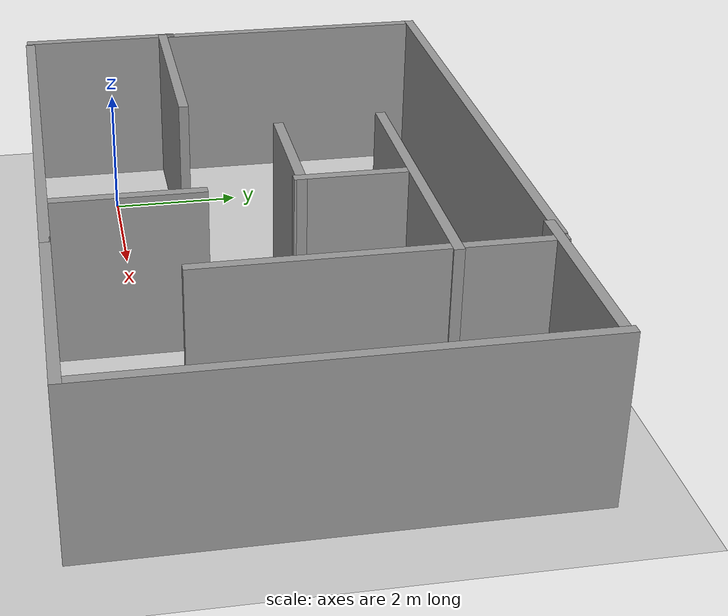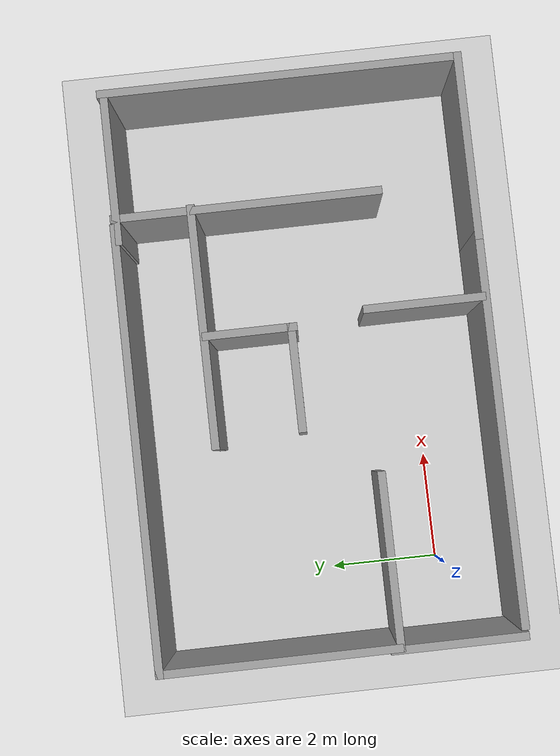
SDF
<sdf version="1.7">
 <world name="default">
  <light name="sun" type="directional">
   <pose>0 0 10 0 -0 0</pose>
   <diffuse>0.8 0.8 0.8 1</diffuse>
   <specular>0.2 0.2 0.2 1</specular>
   <attenuation>
    <range>1000</range>
    <constant>0.9</constant>
    <linear>0.01</linear>
    <quadratic>0.001</quadratic>
   </attenuation>
   <direction>-0.5 0.1 -0.9</direction>
   <spot><inner_angle>0</inner_angle><outer_angle>0</outer_angle><falloff>0</falloff></spot>
  </light>
  <model name="ground_plane">
   <static>1</static>
   <link name="link">
    <collision name="collision">
     <geometry><plane><normal>0 0 1</normal><size>100 100</size></plane></geometry>
     <surface><friction><ode><mu>100</mu><mu2>50</mu2></ode></friction></surface>
    </collision>
    <visual name="visual">
     <cast_shadows>0</cast_shadows>
     <geometry><plane><normal>0 0 1</normal><size>100 100</size></plane></geometry>
     <material>
      <script><uri>file://media/materials/scripts/gazebo.material</uri><name>Gazebo/Grey</name></script>
     </material>
    </visual>
   </link>
  </model>
  <gravity>0 0 -9.8</gravity>
  <magnetic_field>6e-06 2.3e-05 -4.2e-05</magnetic_field>
  <atmosphere type="adiabatic"/>
  <physics type="ode">
   <max_step_size>0.001</max_step_size>
   <real_time_factor>1</real_time_factor>
   <real_time_update_rate>1000</real_time_update_rate>
  </physics>
  <scene><ambient>0.4 0.4 0.4 1</ambient><background>0.7 0.7 0.7 1</background><shadows>1</shadows></scene>
  <audio><device>default</device></audio>
  <spherical_coordinates>
   <surface_model>EARTH_WGS84</surface_model>
   <latitude_deg>0</latitude_deg>
   <longitude_deg>0</longitude_deg>
   <elevation>0</elevation>
   <heading_deg>0</heading_deg>
  </spherical_coordinates>
  <model name="Untitled">
   <pose>3.91739 2.04106 0 0 -0 0</pose>
   <link name="Wall_10">
    <collision name="Wall_10_Collision">
     <geometry><box><size>3.5 0.15 2.5</size></box></geometry>
     <pose>0 0 1.25 0 -0 0</pose>
    </collision>
    <visual name="Wall_10_Visual">
     <pose>0 0 1.25 0 -0 0</pose>
     <geometry><box><size>3.5 0.15 2.5</size></box></geometry>
     <material>
      <script><uri>file://media/materials/scripts/gazebo.material</uri><name>Gazebo/Grey</name></script>
      <ambient>1 1 1 1</ambient>
     </material>
     <meta><layer>0</layer></meta>
    </visual>
    <pose>3.625 -3.3 0 0 -0 0</pose>
   </link>
   <link name="Wall_11">
    <collision name="Wall_11_Collision">
     <geometry><box><size>6.75 0.15 2.5</size></box></geometry>
     <pose>0 0 1.25 0 -0 0</pose>
    </collision>
    <visual name="Wall_11_Visual">
     <pose>0 0 1.25 0 -0 0</pose>
     <geometry><box><size>6.75 0.15 2.5</size></box></geometry>
     <material>
      <script><uri>file://media/materials/scripts/gazebo.material</uri><name>Gazebo/Grey</name></script>
      <ambient>1 1 1 1</ambient>
     </material>
     <meta><layer>0</layer></meta>
    </visual>
    <pose>5.3 0 0 0 -0 1.5708</pose>
   </link>
   <link name="Wall_13">
    <collision name="Wall_13_Collision">
     <geometry><box><size>4.5 0.15 2.5</size></box></geometry>
     <pose>0 0 1.25 0 -0 0</pose>
    </collision>
    <visual name="Wall_13_Visual">
     <pose>0 0 1.25 0 -0 0</pose>
     <geometry><box><size>4.5 0.15 2.5</size></box></geometry>
     <material>
      <script><uri>file://media/materials/scripts/gazebo.material</uri><name>Gazebo/Grey</name></script>
      <ambient>1 1 1 1</ambient>
     </material>
     <meta><layer>0</layer></meta>
    </visual>
    <pose>-5.3 1.125 0 0 -0 -1.5708</pose>
   </link>
   <link name="Wall_14">
    <collision name="Wall_14_Collision">
     <geometry><box><size>3.25 0.15 2.5</size></box></geometry>
     <pose>0 0 1.25 0 -0 0</pose>
    </collision>
    <visual name="Wall_14_Visual">
     <pose>0 0 1.25 0 -0 0</pose>
     <geometry><box><size>3.25 0.15 2.5</size></box></geometry>
     <material>
      <script><uri>file://media/materials/scripts/gazebo.material</uri><name>Gazebo/Grey</name></script>
      <ambient>1 1 1 1</ambient>
     </material>
     <meta><layer>0</layer></meta>
    </visual>
    <pose>-3.75 -1.05 0 0 -0 0</pose>
   </link>
   <link name="Wall_16">
    <collision name="Wall_16_Collision">
     <geometry><box><size>2.25 0.15 2.5</size></box></geometry>
     <pose>0 0 1.25 0 -0 0</pose>
    </collision>
    <visual name="Wall_16_Visual">
     <pose>0 0 1.25 0 -0 0</pose>
     <geometry><box><size>2.25 0.15 2.5</size></box></geometry>
     <material>
      <script><uri>file://media/materials/scripts/gazebo.material</uri><name>Gazebo/Grey</name></script>
      <ambient>1 1 1 1</ambient>
     </material>
     <meta><layer>0</layer></meta>
    </visual>
    <pose>0.826408 -2.17589 0 0 -0 1.5708</pose>
   </link>
   <link name="Wall_18">
    <collision name="Wall_18_Collision">
     <geometry><box><size>5 0.15 2.5</size></box></geometry>
     <pose>0 0 1.25 0 -0 0</pose>
    </collision>
    <visual name="Wall_18_Visual">
     <pose>0 0 1.25 0 -0 0</pose>
     <geometry><box><size>5 0.15 2.5</size></box></geometry>
     <material>
      <script><uri>file://media/materials/scripts/gazebo.material</uri><name>Gazebo/Grey</name></script>
      <ambient>1 1 1 1</ambient>
     </material>
     <meta><layer>0</layer></meta>
    </visual>
    <pose>2.97231 0.857178 0 0 -0 -1.5708</pose>
   </link>
   <link name="Wall_20">
    <collision name="Wall_20_Collision">
     <geometry><box><size>4.5 0.15 2.5</size></box></geometry>
     <pose>0 0 1.25 0 -0 0</pose>
    </collision>
    <visual name="Wall_20_Visual">
     <pose>0 0 1.25 0 -0 0</pose>
     <geometry><box><size>4.5 0.15 2.5</size></box></geometry>
     <material>
      <script><uri>file://media/materials/scripts/gazebo.material</uri><name>Gazebo/Grey</name></script>
      <ambient>1 1 1 1</ambient>
     </material>
     <meta><layer>0</layer></meta>
    </visual>
    <pose>0.832491 1.87503 0 0 -0 3.14159</pose>
   </link>
   <link name="Wall_22">
    <collision name="Wall_22_Collision">
     <geometry><box><size>1.74625 0.15 2.5</size></box></geometry>
     <pose>0 0 1.25 0 -0 0</pose>
    </collision>
    <visual name="Wall_22_Visual">
     <pose>0 0 1.25 0 -0 0</pose>
     <geometry><box><size>1.74625 0.15 2.5</size></box></geometry>
     <material>
      <script><uri>file://media/materials/scripts/gazebo.material</uri><name>Gazebo/Grey</name></script>
      <ambient>1 1 1 1</ambient>
     </material>
     <meta><layer>0</layer></meta>
    </visual>
    <pose>0.650514 1.04172 0 0 -0 -1.5708</pose>
   </link>
   <link name="Wall_23">
    <collision name="Wall_23_Collision">
     <geometry><box><size>2 0.15 2.5</size></box></geometry>
     <pose>0 0 1.25 0 -0 0</pose>
    </collision>
    <visual name="Wall_23_Visual">
     <pose>0 0 1.25 0 -0 0</pose>
     <geometry><box><size>2 0.15 2.5</size></box></geometry>
     <material>
      <script><uri>file://media/materials/scripts/gazebo.material</uri><name>Gazebo/Grey</name></script>
      <ambient>1 1 1 1</ambient>
     </material>
     <meta><layer>0</layer></meta>
    </visual>
    <pose>-0.274486 0.278776 0 0 -0 3.14159</pose>
   </link>
   <link name="Wall_25">
    <collision name="Wall_25_Collision">
     <geometry><box><size>8.25 0.15 2.5</size></box></geometry>
     <pose>0 0 1.25 0 -0 0</pose>
    </collision>
    <visual name="Wall_25_Visual">
     <pose>0 0 1.25 0 -0 0</pose>
     <geometry><box><size>8.25 0.15 2.5</size></box></geometry>
     <material>
      <script><uri>file://media/materials/scripts/gazebo.material</uri><name>Gazebo/Grey</name></script>
      <ambient>1 1 1 1</ambient>
     </material>
     <meta><layer>0</layer></meta>
    </visual>
    <pose>-1.25 3.3 0 0 -0 0</pose>
   </link>
   <link name="Wall_8">
    <collision name="Wall_8_Collision">
     <geometry><box><size>7.25 0.15 2.5</size></box></geometry>
     <pose>0 0 1.25 0 -0 0</pose>
    </collision>
    <visual name="Wall_8_Visual">
     <pose>0 0 1.25 0 -0 0</pose>
     <geometry><box><size>7.25 0.15 2.5</size></box></geometry>
     <material>
      <script><uri>file://media/materials/scripts/gazebo.material</uri><name>Gazebo/Grey</name></script>
      <ambient>1 1 1 1</ambient>
     </material>
     <meta><layer>0</layer></meta>
    </visual>
    <pose>-1.6 -3.3 0 0 -0 0</pose>
   </link>
   <static>1</static>
  </model>
  <model name="Untitled_0">
   <pose>3.83029 2.02531 0 0 -0 0</pose>
   <link name="Wall_21">
    <collision name="Wall_21_Collision">
     <geometry><box><size>2.5 0.15 2.5</size></box></geometry>
     <pose>0 0 1.25 0 -0 0</pose>
    </collision>
    <visual name="Wall_21_Visual">
     <pose>0 0 1.25 0 -0 0</pose>
     <geometry><box><size>2.5 0.15 2.5</size></box></geometry>
     <material>
      <script><uri>file://media/materials/scripts/gazebo.material</uri><name>Gazebo/Grey</name></script>
      <ambient>1 1 1 1</ambient>
     </material>
     <meta><layer>0</layer></meta>
    </visual>
    <pose>-5.24176 -2.09145 0 0 -0 1.5708</pose>
   </link>
   <link name="Wall_25">
    <collision name="Wall_25_Collision">
     <geometry><box><size>2.75 0.15 2.5</size></box></geometry>
     <pose>0 0 1.25 0 -0 0</pose>
    </collision>
    <visual name="Wall_25_Visual">
     <pose>0 0 1.25 0 -0 0</pose>
     <geometry><box><size>2.75 0.15 2.5</size></box></geometry>
     <material>
      <script><uri>file://media/materials/scripts/gazebo.material</uri><name>Gazebo/Grey</name></script>
      <ambient>1 1 1 1</ambient>
     </material>
     <meta><layer>0</layer></meta>
    </visual>
    <pose>3.94176 3.26645 0 0 -0 0</pose>
   </link>
   <static>1</static>
  </model>
 </world>
</sdf>
